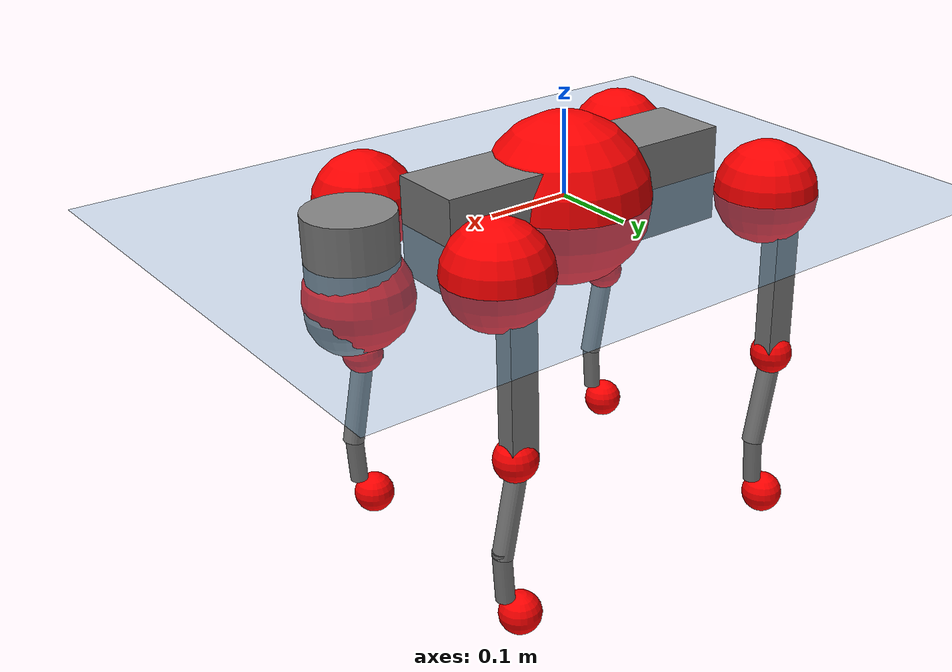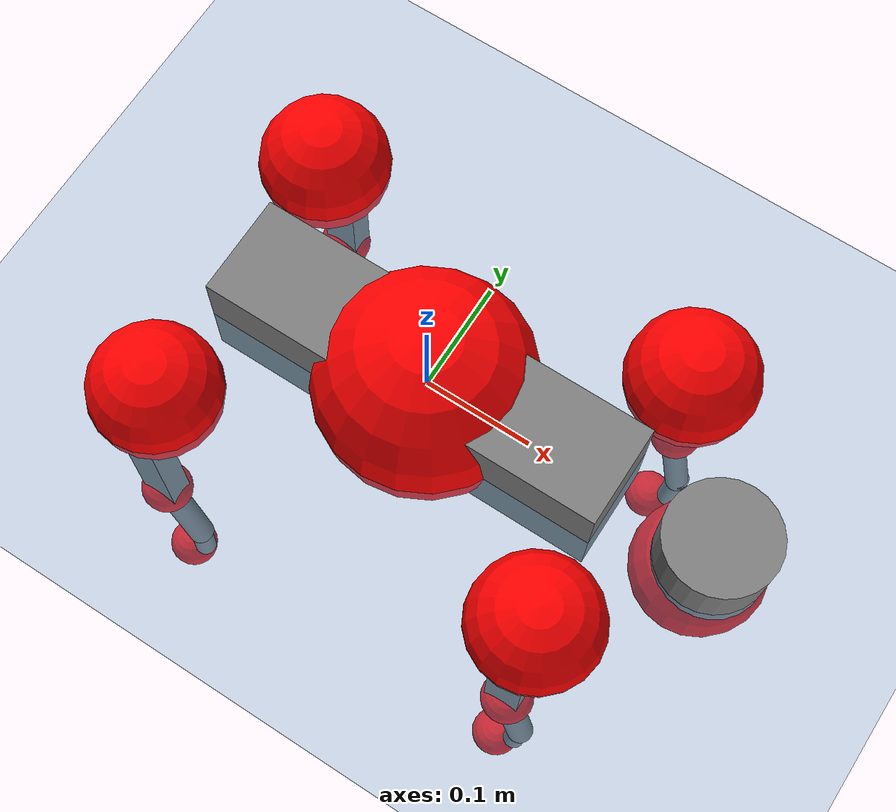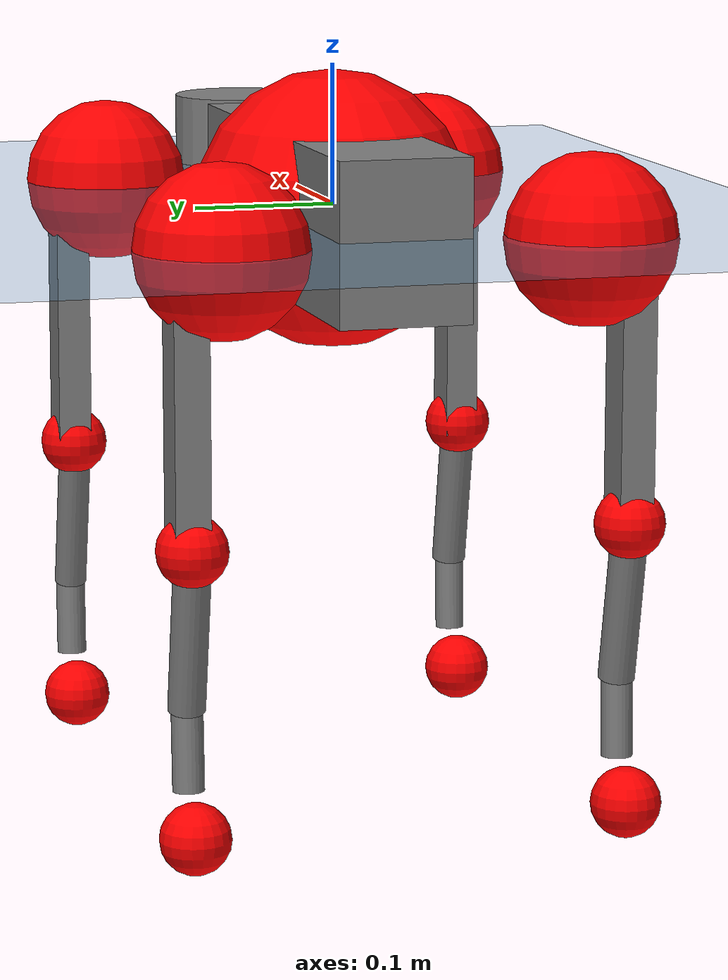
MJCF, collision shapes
<mujoco model="go2">
  <compiler angle="radian" assetdir="assets" balanceinertia="true" inertiafromgeom="false"/>

  <option timestep="0.005" density="1.2" viscosity="2e-05"/>

  <size nkey="1"/>

  <visual>
    <quality shadowsize="8192"/>
    <map shadowclip="0.5"/>
  </visual>

  <default>
    <default class="/">
      <geom contype="0" conaffinity="0" group="1" solref="-1000 -80"/>
      <site size="0.01 0.005 0.005" group="5"/>
      <general forcelimited="true" biastype="affine" gainprm="20" biasprm="0 -20 -0.5"/>
      <default class="go2">
        <joint armature="0.01" damping="0.01" frictionloss="0.2"/>
        <geom condim="1" margin="0.001"/>
        <default class="visual">
          <geom type="mesh" group="2"/>
        </default>
        <default class="collision">
          <geom group="3"/>
          <default class="foot">
            <geom size="0.022 0 0" condim="6" priority="1" friction="0.8 0.02 0.01" solimp="0.015 1 0.022"/>
          </default>
        </default>
        <default class="reward_collision_sphere">
          <geom group="5" rgba="1 0 0 1"/>
        </default>
      </default>
    </default>
  </default>

  <asset>
    <texture type="skybox" colorspace="auto" name="//unnamed_texture_0" builtin="gradient" rgb1="0.95 0.95 0.95" rgb2="0.95 0.95 0.95" width="100" height="600"/>
    <texture type="2d" colorspace="auto" name="texplane" builtin="checker" rgb1="0.345 0.575 0.748" rgb2="0.345 0.575 0.748" markrgb="1 1 1" width="512" height="512"/>
    <material name="MatPlane" class="/" texture="texplane" texuniform="true" texrepeat="2 2" specular="0.9"/>
    <material name="metal" class="/" rgba="0.9 0.95 0.95 1"/>
    <material name="black" class="/" rgba="0 0 0 1"/>
    <material name="white" class="/"/>
    <material name="gray" class="/" rgba="0.671705 0.692426 0.77427 1"/>
    <mesh name="base_0" class="/" file="base_0.obj"/>
    <mesh name="base_1" class="/" file="base_1.obj"/>
    <mesh name="base_2" class="/" file="base_2.obj"/>
    <mesh name="base_3" class="/" file="base_3.obj"/>
    <mesh name="base_4" class="/" file="base_4.obj"/>
    <mesh name="hip_0" class="/" file="hip_0.obj"/>
    <mesh name="hip_1" class="/" file="hip_1.obj"/>
    <mesh name="thigh_0" class="/" file="thigh_0.obj"/>
    <mesh name="thigh_1" class="/" file="thigh_1.obj"/>
    <mesh name="thigh_mirror_0" class="/" file="thigh_mirror_0.obj"/>
    <mesh name="thigh_mirror_1" class="/" file="thigh_mirror_1.obj"/>
    <mesh name="calf_0" class="/" file="calf_0.obj"/>
    <mesh name="calf_1" class="/" file="calf_1.obj"/>
    <mesh name="calf_mirror_0" class="/" file="calf_mirror_0.obj"/>
    <mesh name="calf_mirror_1" class="/" file="calf_mirror_1.obj"/>
    <mesh name="foot" class="/" file="foot.obj"/>
  </asset>

  <worldbody>
    <geom name="floor" class="/" size="100 100 0.125" type="plane" group="0" material="MatPlane"/>
    <light name="toplight_shadow" class="/" pos="0 0 5" dir="0.0990148 0.0990148 -0.990148" type="directional" ambient="0.04 0.04 0.04" diffuse="0.55 0.55 0.55" specular="0.12 0.12 0.12"/>
    <light name="toplight_fill" class="/" pos="0 0 5" dir="0.0990148 0.0990148 -0.990148" type="directional" castshadow="false" ambient="0.04 0.04 0.04" diffuse="0.3 0.3 0.3" specular="0.08 0.08 0.08"/>
    <body name="trunk" childclass="go2" pos="-0.000723016 0.000328201 -0.00258906" quat="1 -0.000416944 8.5016e-05 -0.000195439">
      <inertial pos="0.0174531 -0.00294424 -0.00389926" quat="0.000485029 0.713675 -0.00308224 0.700471" mass="6.77442" diaginertia="0.0953294 0.147179 0.0175859"/>
      <joint name="//unnamed_joint_0" type="free" armature="0" damping="0" frictionloss="0"/>
      <geom name="//unnamed_geom_1" class="visual" material="black" mesh="base_0"/>
      <geom name="//unnamed_geom_2" class="visual" material="black" mesh="base_1"/>
      <geom name="//unnamed_geom_3" class="visual" material="black" mesh="base_2"/>
      <geom name="//unnamed_geom_4" class="visual" material="white" mesh="base_3"/>
      <geom name="//unnamed_geom_5" class="visual" material="gray" mesh="base_4"/>
      <geom name="trunk_1" class="collision" size="0.186319 0.0463072 0.0564602" type="box"/>
      <geom name="trunk_2" class="collision" size="0.0495264 0.0445738" pos="0.275706 0 0.00927645" type="cylinder"/>
      <geom name="trunk_3" class="collision" size="0.0465549" pos="0.283445 0 -0.0556587"/>
      <geom name="//unnamed_geom_9" class="reward_collision_sphere" size="0.0990529"/>
      <geom name="//unnamed_geom_10" class="reward_collision_sphere" size="0.0594317" pos="0.270869 0 -0.041744"/>
      <site name="imu" pos="-0.0361098 0.00531229 0.0530453" size="0.00990529"/>
      <camera name="track" pos="0 -2.15311 0" quat="0.707107 0.707107 0 0" mode="trackcom"/>
      <camera name="ego_camera" pos="0.301825 0 0.041744" quat="-0.5 -0.5 0.5 0.5"/>
      <body name="FL_hip" pos="0.185258 0.0502304 0.00228983" quat="1 0.000476623 0.000411418 -3.52749e-05">
        <inertial pos="-0.00249224 0.000961961 0.000383672" quat="0.499472 0.497072 0.512529 0.490675" mass="0.635519" diaginertia="0.000723085 0.000854452 0.000329583"/>
        <joint name="FL_hip_joint" pos="0 0 0" axis="0.999897 -0.00527263 -0.0133188" stiffness="0.00579636" range="-1.03597 1.08917" armature="0.0111483" damping="0.00649551" frictionloss="0.208284"/>
        <geom name="//unnamed_geom_11" class="visual" material="metal" mesh="hip_0"/>
        <geom name="//unnamed_geom_12" class="visual" material="gray" mesh="hip_1"/>
        <geom name="//unnamed_geom_13" class="collision" size="0.0455643 0.0198106" pos="0 0.0861242 0" quat="0.707107 0.707107 0 0" type="cylinder"/>
        <geom name="//unnamed_geom_14" class="reward_collision_sphere" size="0.0594317" pos="0 0.0753587 0"/>
        <body name="FL_thigh" pos="-0.000443842 0.104467 0.000945676" quat="1 0.000428578 -0.000713731 0.000226293">
          <inertial pos="-0.00271167 -0.0235703 -0.0275787" quat="0.82873 0.0843852 -0.0204472 0.552872" mass="1.14596" diaginertia="0.00485009 0.00841494 0.00060868"/>
          <joint name="FL_thigh_joint" pos="0 0 0" axis="0.00142404 0.999999 0.000104304" range="-1.55882 3.4773" armature="0.00941921" damping="0.00946544" frictionloss="0.170844"/>
          <geom name="//unnamed_geom_15" class="visual" material="metal" mesh="thigh_0"/>
          <geom name="//unnamed_geom_16" class="visual" material="gray" mesh="thigh_1"/>
          <geom name="//unnamed_geom_17" class="collision" size="0.105491 0.012134 0.016839" pos="0 0 -0.0987942" quat="0.707107 0 0.707107 0" type="box"/>
          <body name="FL_calf" pos="0.00256909 -0.00248279 -0.200248" quat="0.999999 0.00103967 -0.000577667 -0.000899513">
            <inertial pos="0.00673834 -0.000873774 -0.130261" quat="0.70923 0.00189567 -0.00321372 0.704967" mass="0.228666" diaginertia="0.00123071 0.0021045 3.6e-05"/>
            <joint name="FL_calf_joint" pos="0 0 0" axis="0.0101971 0.999939 -0.00425589" stiffness="0.000704755" range="-2.77442 -0.821671" armature="0.0107494" damping="0" frictionloss="0.221608"/>
            <geom name="//unnamed_geom_18" class="visual" material="gray" mesh="calf_0"/>
            <geom name="//unnamed_geom_19" class="visual" material="black" mesh="calf_1"/>
            <geom name="FL_calf0" class="collision" size="0.0118863 0.0594317" pos="0.00773911 0 -0.0556587" quat="0.994493 0 -0.104807 0" type="cylinder"/>
            <geom name="//unnamed_geom_21" class="collision" size="0.0108958 0.0321922" pos="0.0193478 0 -0.137292" quat="0.999688 0 0.0249974 0" type="cylinder"/>
            <geom name="//unnamed_geom_22" class="visual" pos="0 0 -0.197588" quat="1 0 0 0" material="black" mesh="foot"/>
            <geom name="FL_foot" class="foot" size="0.0167517" pos="-0.00193478 0 -0.197588"/>
            <geom name="//unnamed_geom_24" class="reward_collision_sphere" size="0.0247632"/>
            <geom name="//unnamed_geom_25" class="reward_collision_sphere" size="0.0247632" pos="-0.00193478 0 -0.197588"/>
            <site name="FL_foot" class="foot" pos="-0.00193478 0 -0.197588" size="0.00990529"/>
          </body>
        </body>
      </body>
      <body name="FR_hip" pos="0.185293 -0.0497955 0.00068518" quat="1 -6.27751e-05 -3.19455e-05 4.72822e-05">
        <inertial pos="-0.00233471 -0.00122739 -0.00093721" quat="0.499272 0.506711 0.499117 0.494827" mass="0.682663" diaginertia="0.000759225 0.000909217 0.000339254"/>
        <joint name="FR_hip_joint" pos="0 0 0" axis="0.999995 0.00276225 0.00162517" stiffness="0.00414947" range="-1.10429 1.02912" armature="0.00856785" damping="0.0109335" frictionloss="0.171001"/>
        <geom name="//unnamed_geom_26" class="visual" pos="0 1.29722e-09 5.56404e-08" quat="4.63268e-05 1 0 0" material="metal" mesh="hip_0"/>
        <geom name="//unnamed_geom_27" class="visual" pos="0 2.10295e-09 -1.3762e-07" quat="4.63268e-05 1 0 0" material="gray" mesh="hip_1"/>
        <geom name="//unnamed_geom_28" class="collision" size="0.0455643 0.0198106" pos="0 -0.0861242 0" quat="0.707107 0.707107 0 0" type="cylinder"/>
        <geom name="//unnamed_geom_29" class="reward_collision_sphere" size="0.0594317" pos="0 -0.0753587 0"/>
        <body name="FR_thigh" pos="-0.00084557 -0.0999725 -0.00163411" quat="1 0.000176856 0.000384597 -9.5763e-05">
          <inertial pos="-0.00378896 0.0231015 -0.029454" quat="0.554301 -0.025647 0.0723101 0.828773" mass="1.04627" diaginertia="0.00482083 0.0083971 0.000592934"/>
          <joint name="FR_thigh_joint" pos="0 0 0" axis="-0.0118115 -0.999929 -0.00140984" range="-3.44453 1.61914" armature="0.00994741" damping="0" frictionloss="0.216954"/>
          <geom name="//unnamed_geom_30" class="visual" material="metal" mesh="thigh_mirror_0"/>
          <geom name="//unnamed_geom_31" class="visual" material="gray" mesh="thigh_mirror_1"/>
          <geom name="//unnamed_geom_32" class="collision" size="0.105491 0.012134 0.016839" pos="0 0 -0.0987942" quat="0.707107 0 0.707107 0" type="box"/>
          <body name="FR_calf" pos="0.00249137 -0.00249159 -0.196554" quat="1 5.62083e-05 -2.66276e-05 6.12617e-05">
            <inertial pos="0.00583376 0.000792751 -0.128659" quat="0.704503 0.00434944 0.00695417 0.709654" mass="0.238189" diaginertia="0.00122756 0.00204655 3.64986e-05"/>
            <joint name="FR_calf_joint" pos="0 0 0" axis="-0.00191696 -0.999971 -0.00740189" range="0.793805 2.77126" armature="0.00987182" damping="0.00418103" frictionloss="0.173858"/>
            <geom name="//unnamed_geom_33" class="visual" material="gray" mesh="calf_mirror_0"/>
            <geom name="//unnamed_geom_34" class="visual" material="black" mesh="calf_mirror_1"/>
            <geom name="FR_calf0" class="collision" size="0.0128769 0.0594317" pos="0.00967389 0 -0.0556587" quat="0.995004 0 -0.0998334 0" type="cylinder"/>
            <geom name="//unnamed_geom_36" class="collision" size="0.0108958 0.0321922" pos="0.0193478 0 -0.137292" quat="0.999688 0 0.0249974 0" type="cylinder"/>
            <geom name="//unnamed_geom_37" class="visual" pos="0 0 -0.197588" quat="1 0 0 0" material="black" mesh="foot"/>
            <geom name="FR_foot" class="foot" size="0.0210883" pos="-0.00193478 0 -0.197588"/>
            <geom name="//unnamed_geom_39" class="reward_collision_sphere" size="0.0247632"/>
            <geom name="//unnamed_geom_40" class="reward_collision_sphere" size="0.0247632" pos="-0.00193478 0 -0.197588"/>
            <site name="FR_foot" class="foot" pos="-0.00193478 0 -0.197588" size="0.00990529"/>
          </body>
        </body>
      </body>
      <body name="RL_hip" pos="-0.189367 0.0517332 0.000395916" quat="1 -0.000276468 -7.35892e-06 -1.84318e-05">
        <inertial pos="0.00635862 0.00506486 -0.000601085" quat="0.498842 0.507034 0.494794 0.499252" mass="0.657562" diaginertia="0.000719758 0.000856882 0.000307204"/>
        <joint name="RL_hip_joint" pos="0 0 0" axis="-0.999989 0.000298714 0.00463855" range="-1.03776 1.00811" armature="0.00842175" damping="0" frictionloss="0.196805"/>
        <geom name="//unnamed_geom_41" class="visual" pos="-3.46232e-10 0 -6.78694e-08" quat="4.63268e-05 0 1 0" material="metal" mesh="hip_0"/>
        <geom name="//unnamed_geom_42" class="visual" pos="-5.61283e-10 0 -6.01905e-08" quat="4.63268e-05 0 1 0" material="gray" mesh="hip_1"/>
        <geom name="//unnamed_geom_43" class="collision" size="0.0455643 0.0198106" pos="0 0.0861242 0" quat="0.707107 0.707107 0 0" type="cylinder"/>
        <geom name="//unnamed_geom_44" class="reward_collision_sphere" size="0.0594317" pos="0 0.0753587 0"/>
        <body name="RL_thigh" pos="-0.00232353 0.100137 -0.000173833" quat="1 -2.64968e-05 -1.61496e-06 3.13525e-05">
          <inertial pos="-0.00374314 -0.0209337 -0.0293766" quat="0.828101 0.0855351 -0.0215629 0.553595" mass="1.11739" diaginertia="0.00502248 0.00819604 0.000601852"/>
          <joint name="RL_thigh_joint" pos="0 0 0" axis="0.00705473 0.999959 0.00563978" stiffness="0.0137859" range="-0.514103 4.56072" armature="0.0090894" damping="0" frictionloss="0.20249"/>
          <geom name="//unnamed_geom_45" class="visual" material="metal" mesh="thigh_0"/>
          <geom name="//unnamed_geom_46" class="visual" material="gray" mesh="thigh_1"/>
          <geom name="//unnamed_geom_47" class="collision" size="0.105491 0.012134 0.016839" pos="0 0 -0.0987942" quat="0.707107 0 0.707107 0" type="box"/>
          <body name="RL_calf" pos="-0.00209416 -0.00222981 -0.198547" quat="1 -0.000101639 -7.31914e-05 0.000238048">
            <inertial pos="0.00624957 -0.000424998 -0.130909" quat="0.706369 0.00812891 -0.000539359 0.707797" mass="0.235489" diaginertia="0.00125951 0.00209466 3.55615e-05"/>
            <joint name="RL_calf_joint" pos="0 0 0" axis="-0.000848173 0.999998 0.00178672" range="-2.71633 -0.834063" armature="0.00864615" damping="0.00503246" frictionloss="0.222592"/>
            <geom name="//unnamed_geom_48" class="visual" material="gray" mesh="calf_0"/>
            <geom name="//unnamed_geom_49" class="visual" material="black" mesh="calf_1"/>
            <geom name="RL_calf0" class="collision" size="0.0128769 0.0594317" pos="0.00967389 0 -0.0556587" quat="0.995004 0 -0.0998334 0" type="cylinder"/>
            <geom name="//unnamed_geom_51" class="collision" size="0.0108958 0.0321922" pos="0.0193478 0 -0.137292" quat="0.999688 0 0.0249974 0" type="cylinder"/>
            <geom name="//unnamed_geom_52" class="visual" pos="0 0 -0.197588" quat="1 0 0 0" material="black" mesh="foot"/>
            <geom name="RL_foot" class="foot" size="0.0187201" pos="-0.00193478 0 -0.197588"/>
            <geom name="//unnamed_geom_54" class="reward_collision_sphere" size="0.0247632"/>
            <geom name="//unnamed_geom_55" class="reward_collision_sphere" size="0.0247632" pos="-0.00193478 0 -0.197588"/>
            <site name="RL_foot" class="foot" pos="-0.00193478 0 -0.197588" size="0.00990529"/>
          </body>
        </body>
      </body>
      <body name="RR_hip" pos="-0.188008 -0.0534215 -0.00125631" quat="0.999999 0.00108561 -0.000108078 0.000851944">
        <inertial pos="0.00256305 -0.00259567 0.00267746" quat="0.500554 0.49663 0.498392 0.504391" mass="0.646413" diaginertia="0.000735969 0.000843365 0.000313156"/>
        <joint name="RR_hip_joint" pos="0 0 0" axis="-1 2.66156e-05 -0.000673705" range="-1.10119 1.0924" armature="0.00988466" damping="0" frictionloss="0.197079"/>
        <geom name="//unnamed_geom_56" class="visual" pos="3.50011e-10 1.29722e-09 -1.2351e-07" quat="2.14617e-09 4.63268e-05 4.63268e-05 -1" material="metal" mesh="hip_0"/>
        <geom name="//unnamed_geom_57" class="visual" pos="5.51935e-10 2.10295e-09 7.74294e-08" quat="2.14617e-09 4.63268e-05 4.63268e-05 -1" material="gray" mesh="hip_1"/>
        <geom name="//unnamed_geom_58" class="collision" size="0.0455643 0.0198106" pos="0 -0.0861242 0" quat="0.707107 0.707107 0 0" type="cylinder"/>
        <geom name="//unnamed_geom_59" class="reward_collision_sphere" size="0.0594317" pos="0 -0.0753587 0"/>
        <body name="RR_thigh" pos="-0.00126624 -0.10494 0.00173497" quat="1 -0.000142858 0.000134636 -6.36897e-05">
          <inertial pos="-0.000879586 0.0248791 -0.0314121" quat="0.551623 -0.0200676 0.0847624 0.829533" mass="1.05755" diaginertia="0.00473835 0.00825217 0.000582027"/>
          <joint name="RR_thigh_joint" pos="0 0 0" axis="0.0139089 -0.999817 0.013125" range="-4.53779 0.519818" armature="0.00947834" damping="0.0105746" frictionloss="0.199601"/>
          <geom name="//unnamed_geom_60" class="visual" material="metal" mesh="thigh_mirror_0"/>
          <geom name="//unnamed_geom_61" class="visual" material="gray" mesh="thigh_mirror_1"/>
          <geom name="//unnamed_geom_62" class="collision" size="0.105491 0.012134 0.016839" pos="0 0 -0.0987942" quat="0.707107 0 0.707107 0" type="box"/>
          <body name="RR_calf" pos="-0.00225078 3.02922e-05 -0.198501" quat="1 0.000416433 -0.000437657 0.000383355">
            <inertial pos="0.00505022 0.000568986 -0.131328" quat="0.702431 -0.0103164 -0.0111226 0.71159" mass="0.230045" diaginertia="0.00122229 0.002175 3.63148e-05"/>
            <joint name="RR_calf_joint" pos="0 0 0" axis="-0.000110694 -1 0.000196467" stiffness="0.0116294" range="0.854678 2.72752" armature="0.00869312" damping="0.0147692" frictionloss="0.19769"/>
            <geom name="//unnamed_geom_63" class="visual" material="gray" mesh="calf_mirror_0"/>
            <geom name="//unnamed_geom_64" class="visual" material="black" mesh="calf_mirror_1"/>
            <geom name="RR_calf0" class="collision" size="0.0128769 0.0594317" pos="0.00967389 0 -0.0556587" quat="0.995004 0 -0.0998334 0" type="cylinder"/>
            <geom name="//unnamed_geom_66" class="collision" size="0.0108958 0.0321922" pos="0.0193478 0 -0.137292" quat="0.999688 0 0.0249974 0" type="cylinder"/>
            <geom name="//unnamed_geom_67" class="visual" pos="0 0 -0.197588" quat="1 0 0 0" material="black" mesh="foot"/>
            <geom name="RR_foot" class="foot" size="0.0199611" pos="-0.00193478 0 -0.197588"/>
            <geom name="//unnamed_geom_69" class="reward_collision_sphere" size="0.0247632"/>
            <geom name="//unnamed_geom_70" class="reward_collision_sphere" size="0.0247632" pos="-0.00193478 0 -0.197588"/>
            <site name="RR_foot" class="foot" pos="-0.00193478 0 -0.197588" size="0.00990529"/>
          </body>
        </body>
      </body>
    </body>
  </worldbody>

  <contact>
    <pair class="/" geom1="floor" geom2="FL_foot" name="//unnamed_contact_0"/>
    <pair class="/" geom1="floor" geom2="FR_foot" name="//unnamed_contact_1"/>
    <pair class="/" geom1="floor" geom2="RL_foot" name="//unnamed_contact_2"/>
    <pair class="/" geom1="floor" geom2="RR_foot" name="//unnamed_contact_3"/>
  </contact>

  <actuator>
    <general name="FL_hip" class="/" joint="FL_hip_joint" forcerange="-24.3846 24.3846" gainprm="19.5147" biasprm="0 -19.5147 -0.498621"/>
    <general name="FL_thigh" class="/" joint="FL_thigh_joint" forcerange="-21.6233 21.6233" gainprm="19.5147" biasprm="0 -19.5147 -0.498621"/>
    <general name="FL_calf" class="/" joint="FL_calf_joint" forcerange="-45.7734 45.7734" gainprm="19.5147" biasprm="0 -19.5147 -0.498621"/>
    <general name="FR_hip" class="/" joint="FR_hip_joint" forcerange="-21.4042 21.4042" gainprm="19.5147" biasprm="0 -19.5147 -0.498621"/>
    <general name="FR_thigh" class="/" joint="FR_thigh_joint" forcerange="-24.6464 24.6464" gainprm="19.5147" biasprm="0 -19.5147 -0.498621"/>
    <general name="FR_calf" class="/" joint="FR_calf_joint" forcerange="-40.0437 40.0437" gainprm="19.5147" biasprm="0 -19.5147 -0.498621"/>
    <general name="RL_hip" class="/" joint="RL_hip_joint" forcerange="-23.5044 23.5044" gainprm="19.5147" biasprm="0 -19.5147 -0.498621"/>
    <general name="RL_thigh" class="/" joint="RL_thigh_joint" forcerange="-21.1203 21.1203" gainprm="19.5147" biasprm="0 -19.5147 -0.498621"/>
    <general name="RL_calf" class="/" joint="RL_calf_joint" forcerange="-46.1479 46.1479" gainprm="19.5147" biasprm="0 -19.5147 -0.498621"/>
    <general name="RR_hip" class="/" joint="RR_hip_joint" forcerange="-23.1897 23.1897" gainprm="19.5147" biasprm="0 -19.5147 -0.498621"/>
    <general name="RR_thigh" class="/" joint="RR_thigh_joint" forcerange="-21.2717 21.2717" gainprm="19.5147" biasprm="0 -19.5147 -0.498621"/>
    <general name="RR_calf" class="/" joint="RR_calf_joint" forcerange="-49.7594 49.7594" gainprm="19.5147" biasprm="0 -19.5147 -0.498621"/>
  </actuator>

  <sensor>
    <gyro site="imu" name="imu_angular_velocity"/>
    <velocimeter site="imu" name="imu_linear_velocity"/>
    <framelinvel objtype="site" objname="FL_foot" name="FL_foot_global_linear_velocity"/>
    <framelinvel objtype="site" objname="FR_foot" name="FR_foot_global_linear_velocity"/>
    <framelinvel objtype="site" objname="RL_foot" name="RL_foot_global_linear_velocity"/>
    <framelinvel objtype="site" objname="RR_foot" name="RR_foot_global_linear_velocity"/>
  </sensor>

  <keyframe>
    <key name="home" qpos="0 0 0.325 1 0 0 0 0.1 0.8 -1.5 -0.1 -0.8 1.5 -0.1 0.8 -1.5 0.1 -0.8 1.5"/>
  </keyframe>
</mujoco>
